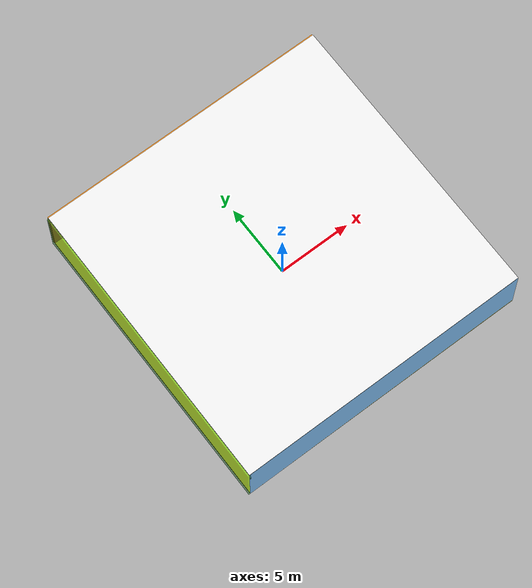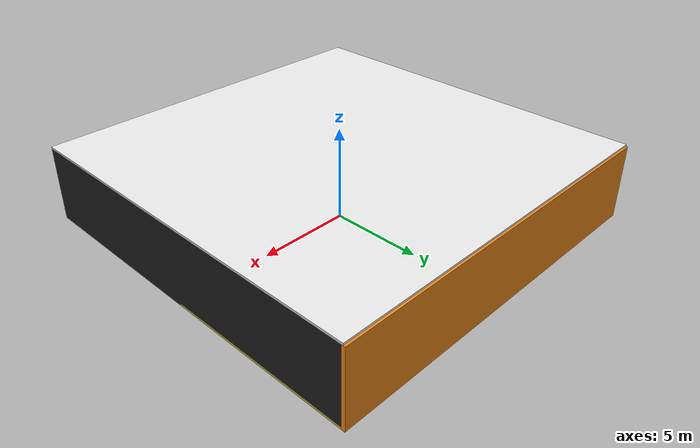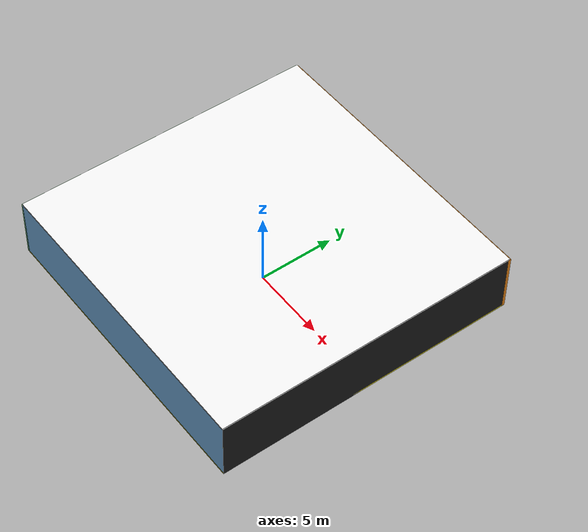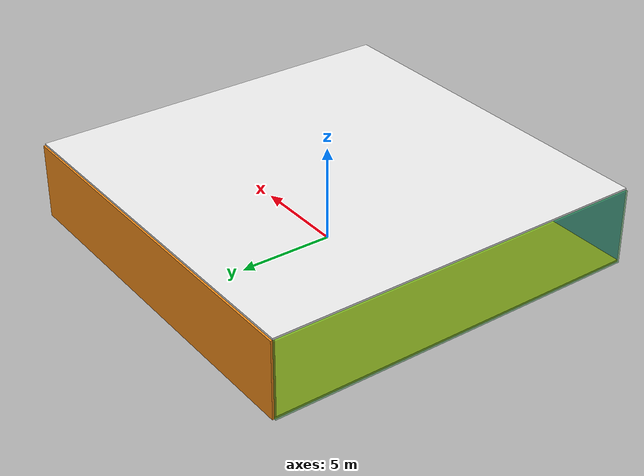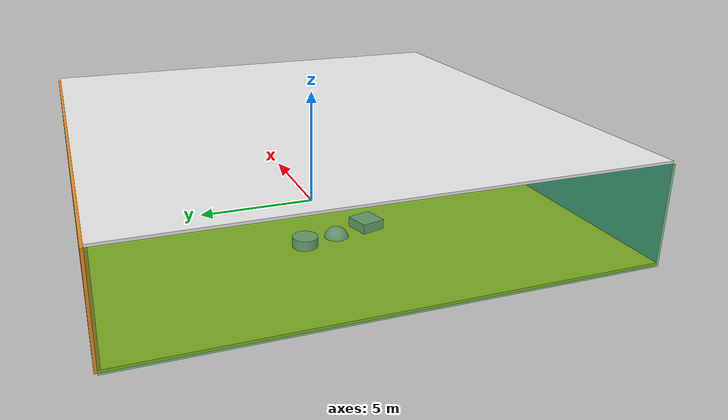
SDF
<sdf version="1.4">
 <world name="default">
  <physics type="ode">
   <max_step_size>0.001</max_step_size>
   <real_time_factor>1</real_time_factor>
   <real_time_update_rate>1000</real_time_update_rate>
   <gravity>0 0 -9.8</gravity>
  </physics>
  <scene><ambient>0.4 0.4 0.4 1</ambient><background>0.7 0.7 0.7 1</background><shadows>1</shadows></scene>
  <model name="Surrounding">
   <static>1</static>
   <link name="Ceiling">
    <collision name="Ceiling_Collision"><geometry><box><size>20 20 0.1</size></box></geometry></collision>
    <visual name="Ceiling_Visual">
     <geometry><box><size>20 20 0.1</size></box></geometry>
     <material>
      <script><uri>file://media/materials/scripts/gazebo.material</uri><name>Gazebo/White</name></script>
     </material>
    </visual>
    <pose>0 0 4.05 0 0 0</pose>
   </link>
   <link name="Wall_South">
    <collision name="Wall_South_Collision">
     <geometry><box><size>20 0 4</size></box></geometry>
     <pose>0 0 2 0 -0 0</pose>
    </collision>
    <visual name="Wall_South_Visual">
     <pose>0 0 2 0 -0 0</pose>
     <geometry><box><size>20 0 4</size></box></geometry>
     <material>
      <script><uri>file://media/materials/scripts/gazebo.material</uri><name>Gazebo/SkyBlue</name></script>
     </material>
    </visual>
    <velocity_decay><linear>0</linear><angular>0</angular></velocity_decay>
    <pose>0 -10 0 0 -0 0</pose>
   </link>
   <link name="Wall_East">
    <collision name="Wall_21_Collision">
     <geometry><box><size>20 0 4</size></box></geometry>
     <pose>0 0 2 0 -0 0</pose>
    </collision>
    <visual name="Wall_21_Visual">
     <pose>0 0 2 0 -0 0</pose>
     <geometry><box><size>20 0 4</size></box></geometry>
     <material>
      <script><uri>file://media/materials/scripts/gazebo.material</uri><name>Gazebo/Black</name></script>
     </material>
    </visual>
    <velocity_decay><linear>0</linear><angular>0</angular></velocity_decay>
    <pose>10 0 0 0 -0 1.5708</pose>
   </link>
   <link name="Wall_North">
    <collision name="Wall_22_Collision">
     <geometry><box><size>20 0.2 4</size></box></geometry>
     <pose>0 0 2 0 -0 0</pose>
    </collision>
    <visual name="Wall_22_Visual">
     <pose>0 0 2 0 -0 0</pose>
     <geometry><box><size>20 0.2 4</size></box></geometry>
     <material>
      <script><uri>file://media/materials/scripts/gazebo.material</uri><name>Gazebo/Orange</name></script>
     </material>
    </visual>
    <velocity_decay><linear>0</linear><angular>0</angular></velocity_decay>
    <pose>0 10 0 0 -0 0</pose>
   </link>
   <link name="Wall_West">
    <collision name="Wall_23_Collision">
     <geometry><box><size>20 0.2 4</size></box></geometry>
     <pose>0 0 2 0 -0 0</pose>
    </collision>
    <visual name="Wall_23_Visual">
     <pose>0 0 2 0 -0 0</pose>
     <geometry><box><size>20 0.2 4</size></box></geometry>
     <material>
      <script><uri>file://media/materials/scripts/gazebo.material</uri><name>Gazebo/GreenTransparent</name></script>
     </material>
    </visual>
    <velocity_decay><linear>0</linear><angular>0</angular></velocity_decay>
    <pose>-10 0 0 0 0 -1.5708</pose>
   </link>
   <link name="Ground_link">
    <collision name="collision">
     <pose>0 0 .05 0 -0 0</pose>
     <geometry><box><size>20 20 0.1</size></box></geometry>
    </collision>
    <visual name="visual">
     <pose>0 0 .05 0 -0 0</pose>
     <geometry><box><size>20 20 0.1</size></box></geometry>
     <material>
      <script><uri>file://media/materials/scripts/gazebo.material</uri><name>Gazebo/YellowGlow</name></script>
     </material>
    </visual>
   </link>
   <static>1</static>
  </model>
  <spherical_coordinates>
   <surface_model>EARTH_WGS84</surface_model>
   <latitude_deg>0</latitude_deg>
   <longitude_deg>0</longitude_deg>
   <elevation>0</elevation>
   <heading_deg>0</heading_deg>
  </spherical_coordinates>
  <light name="lightball_0" type="diffuse">
   <diffuse>0.8 0.8 0.8 1</diffuse>
   <specular>0.2 0.2 0.2 1</specular>
   <attenuation>
    <range>100</range>
    <constant>0.7</constant>
    <linear>0.01</linear>
    <quadratic>0.001</quadratic>
   </attenuation>
   <direction>-0.5 0.1 -0.9</direction>
   <pose>-4.42762469543 -2.46597302928 3.66879624601 0 0 0</pose>
  </light>
  <light name="lightball_1" type="diffuse">
   <diffuse>0.8 0.8 0.8 1</diffuse>
   <specular>0.2 0.2 0.2 1</specular>
   <attenuation>
    <range>100</range>
    <constant>0.7</constant>
    <linear>0.01</linear>
    <quadratic>0.001</quadratic>
   </attenuation>
   <direction>-0.5 0.1 -0.9</direction>
   <pose>6.66183131932 4.92247475943 0.808810083062 0 0 0</pose>
  </light>
  <light name="lightball_2" type="diffuse">
   <diffuse>0.8 0.8 0.8 1</diffuse>
   <specular>0.2 0.2 0.2 1</specular>
   <attenuation>
    <range>100</range>
    <constant>0.7</constant>
    <linear>0.01</linear>
    <quadratic>0.001</quadratic>
   </attenuation>
   <direction>-0.5 0.1 -0.9</direction>
   <pose>-9.61957334119 -9.98981068522 3.08828189352 0 0 0</pose>
  </light>
  <light name="lightball_3" type="diffuse">
   <diffuse>0.8 0.8 0.8 1</diffuse>
   <specular>0.2 0.2 0.2 1</specular>
   <attenuation>
    <range>100</range>
    <constant>0.7</constant>
    <linear>0.01</linear>
    <quadratic>0.001</quadratic>
   </attenuation>
   <direction>-0.5 0.1 -0.9</direction>
   <pose>2.61814474663 9.77709613232 0.701260375385 0 0 0</pose>
  </light>
  <light name="lightball_4" type="diffuse">
   <diffuse>0.8 0.8 0.8 1</diffuse>
   <specular>0.2 0.2 0.2 1</specular>
   <attenuation>
    <range>100</range>
    <constant>0.7</constant>
    <linear>0.01</linear>
    <quadratic>0.001</quadratic>
   </attenuation>
   <direction>-0.5 0.1 -0.9</direction>
   <pose>-9.85277222797 0.624574339821 3.84353110845 0 0 0</pose>
  </light>
  <light name="lightball_5" type="diffuse">
   <diffuse>0.8 0.8 0.8 1</diffuse>
   <specular>0.2 0.2 0.2 1</specular>
   <attenuation>
    <range>100</range>
    <constant>0.7</constant>
    <linear>0.01</linear>
    <quadratic>0.001</quadratic>
   </attenuation>
   <direction>-0.5 0.1 -0.9</direction>
   <pose>1.66491575068 4.22331236501 2.03286043656 0 0 0</pose>
  </light>
  <light name="lightball_6" type="diffuse">
   <diffuse>0.8 0.8 0.8 1</diffuse>
   <specular>0.2 0.2 0.2 1</specular>
   <attenuation>
    <range>100</range>
    <constant>0.7</constant>
    <linear>0.01</linear>
    <quadratic>0.001</quadratic>
   </attenuation>
   <direction>-0.5 0.1 -0.9</direction>
   <pose>-4.41388397394 7.48599324237 1.19035183806 0 0 0</pose>
  </light>
  <light name="lightball_7" type="diffuse">
   <diffuse>0.8 0.8 0.8 1</diffuse>
   <specular>0.2 0.2 0.2 1</specular>
   <attenuation>
    <range>100</range>
    <constant>0.7</constant>
    <linear>0.01</linear>
    <quadratic>0.001</quadratic>
   </attenuation>
   <direction>-0.5 0.1 -0.9</direction>
   <pose>7.08943562856 2.27172272677 3.84497131052 0 0 0</pose>
  </light>
  <include>
   <uri>model://textured_shapes</uri>
   <pose>-4.00729835691 0.354415251868 0 0 0 0.266067298371</pose>
  </include>
  <include><uri>model://cabinet</uri><pose>-0.315200983611 -8.10323199929 0 0 0 2.02299311043</pose></include>
  <include>
   <uri>model://textured_shapes</uri>
   <pose>2.26419592321 2.03337494282 0 0 0 0.298468876488</pose>
  </include>
  <include>
   <uri>model://robocup_3Dsim_goal</uri>
   <pose>6.70182248723 -8.07185103916 0 0 0 2.59111090622</pose>
  </include>
 </world>
</sdf>

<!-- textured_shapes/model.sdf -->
<sdf version="1.6">
  <model name="textured_shapes">
    <pose>0 0 0.5 0 0 0</pose>
    <link name="box">
      <pose>0 -1.5 0 0 0 0</pose>
      <collision name="collision">
        <geometry>
          <box>
            <size>1 1 1</size>
          </box>
        </geometry>
      </collision>
      <visual name="visual">
        <geometry>
          <box>
            <size>1 1 1</size>
          </box>
        </geometry>
        <material>
          <script>
            <uri>model://../model_source/models/textured_shapes/materials/scripts</uri>
            <uri>model://../model_source/models/textured_shapes/materials/textures</uri>
            <name>TexturedShape/Squares</name>
          </script>
        </material>
      </visual>
    </link>
    <link name="sphere">
      <collision name="collision">
        <geometry>
          <sphere>
            <radius>0.5</radius>
          </sphere>
        </geometry>
      </collision>
      <visual name="visual">
        <geometry>
          <sphere>
            <radius>0.5</radius>
          </sphere>
        </geometry>
        <material>
          <script>
            <uri>model://../model_source/models/textured_shapes/materials/scripts</uri>
            <uri>model://../model_source/models/textured_shapes/materials/textures</uri>
            <name>TexturedShape/Squares</name>
          </script>
        </material>
      </visual>
    </link>
    <link name="cylinder">
      <pose>0 1.5 0 0 0 0</pose>
      <collision name="collision">
        <geometry>
          <cylinder>
            <radius>0.5</radius>
            <length>1</length>
          </cylinder>
        </geometry>
      </collision>
      <visual name="visual">
        <geometry>
          <cylinder>
            <radius>0.5</radius>
            <length>1</length>
          </cylinder>
        </geometry>
        <material>
          <script>
            <uri>model://../model_source/models/textured_shapes/materials/scripts</uri>
            <uri>model://../model_source/models/textured_shapes/materials/textures</uri>
            <name>TexturedShape/Squares</name>
          </script>
        </material>
      </visual>
    </link>
  </model>
</sdf>

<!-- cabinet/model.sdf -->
<sdf version="1.5">
  <model name="cabinet">
    <static>true</static>
    <link name="cabinet_bottom_plate">
      <inertial>
        <pose>0 0 -1 0 0 0</pose>
        <inertia>
          <ixx>2.050000</ixx>
          <ixy>0</ixy>
          <ixz>0</ixz>
          <iyy>2.050000</iyy>
          <iyz>0</iyz>
          <izz>2.050000</izz>
        </inertia>
        <mass>25.000000</mass>
      </inertial>
      <collision name="cabinet_bottom_plate_geom">
        <pose>0 0 0.010000 0 0 0</pose>
        <geometry>
          <box>
            <size>0.450000 0.450000 0.020000</size>
          </box>
        </geometry>
      </collision>
      <visual name="cabinet_bottom_plate_geom_visual">
        <pose>0 0 0.010000 0 0 0</pose>
        <geometry>
          <box>
            <size>0.450000 0.450000 0.020000</size>
          </box>
        </geometry>
        <material>
          <script>
            <uri>model://media/materials/scripts/gazebo.material</uri>
            <name>Gazebo/Wood</name>
          </script>
        </material>
      </visual>
      <collision name="cabinet_bottom_plate_geom_cabinet_back_plate">
        <pose>0.235000 0 0.510000 0 0 0</pose>
        <geometry>
          <box>
            <size>0.020000 0.450000 1.020000</size>
          </box>
        </geometry>
      </collision>
      <visual name="cabinet_bottom_plate_geom_cabinet_back_plate_visual">
        <pose>0.235000 0 0.510000 0 0 0</pose>
        <geometry>
          <box>
            <size>0.020000 0.450000 1.020000</size>
          </box>
        </geometry>
        <material>
          <script>
            <uri>model://media/materials/scripts/gazebo.material</uri>
            <name>Gazebo/Wood</name>
          </script>
        </material>
      </visual>
      <collision name="cabinet_bottom_plate_geom_cabinet_left_plate">
        <pose>0 0.235000 0.510000 0 0 0</pose>
        <geometry>
          <box>
            <size>0.450000 0.020000 1.020000</size>
          </box>
        </geometry>
      </collision>
      <visual name="cabinet_bottom_plate_geom_cabinet_left_plate_visual">
        <pose>0 0.235000 0.510000 0 0 0</pose>
        <geometry>
          <box>
            <size>0.450000 0.020000 1.020000</size>
          </box>
        </geometry>
        <material>
          <script>
            <uri>model://media/materials/scripts/gazebo.material</uri>
            <name>Gazebo/Wood</name>
          </script>
        </material>
      </visual>
      <collision name="cabinet_bottom_plate_geom_cabinet_middle_plate">
        <pose>0 0 0.510000 0 0 0</pose>
        <geometry>
          <box>
            <size>0.450000 0.450000 0.020000</size>
          </box>
        </geometry>
      </collision>
      <visual name="cabinet_bottom_plate_geom_cabinet_middle_plate_visual">
        <pose>0 0 0.510000 0 0 0</pose>
        <geometry>
          <box>
            <size>0.450000 0.450000 0.020000</size>
          </box>
        </geometry>
        <material>
          <script>
            <uri>model://media/materials/scripts/gazebo.material</uri>
            <name>Gazebo/Wood</name>
          </script>
        </material>
      </visual>
      <collision name="cabinet_bottom_plate_geom_cabinet_right_plate">
        <pose>0 -0.235000 0.510000 0 0 0</pose>
        <geometry>
          <box>
            <size>0.450000 0.020000 1.020000</size>
          </box>
        </geometry>
      </collision>
      <visual name="cabinet_bottom_plate_geom_cabinet_right_plate_visual">
        <pose>0 -0.235000 0.510000 0 0 0</pose>
        <geometry>
          <box>
            <size>0.450000 0.020000 1.020000</size>
          </box>
        </geometry>
        <material>
          <script>
            <uri>model://media/materials/scripts/gazebo.material</uri>
            <name>Gazebo/Wood</name>
          </script>
        </material>
      </visual>
      <collision name="cabinet_bottom_plate_geom_cabinet_top_plate">
        <pose>0 0 1.010000 0 0 0</pose>
        <geometry>
          <box>
            <size>0.450000 0.450000 0.020000</size>
          </box>
        </geometry>
      </collision>
      <visual name="cabinet_bottom_plate_geom_cabinet_top_plate_visual">
        <pose>0 0 1.010000 0 0 0</pose>
        <geometry>
          <box>
            <size>0.450000 0.450000 0.020000</size>
          </box>
        </geometry>
        <material>
          <script>
            <uri>model://media/materials/scripts/gazebo.material</uri>
            <name>Gazebo/Wood</name>
          </script>
        </material>
      </visual>
    </link>
  </model>
</sdf>

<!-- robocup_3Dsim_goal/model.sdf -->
<sdf version="1.5">
  <model name="robocup_3d_goal">
    <static>true</static>
    <link name="left_post">
      <pose>0 1.05 0.45 0 0 0</pose>
      <collision name="collision">
        <geometry>
          <cylinder>
            <radius>0.05</radius>
            <length>0.9</length>
          </cylinder>
        </geometry>
      </collision>
      <visual name="visual">
        <geometry>
          <cylinder>
            <radius>0.05</radius>
            <length>0.9</length>
          </cylinder>
        </geometry>
        <material>
          <script>
            <uri>file://media/materials/scripts/gazebo.material</uri>
            <name>Gazebo/ZincYellow</name>
          </script>
        </material>
      </visual>
    </link>
    <link name="left_support_horiz_lower">
      <pose>0.30 1.05 0.01 0 0 0</pose>
      <collision name="collision">
        <geometry>
          <box>
            <size>0.50 0.02 0.02</size>
          </box>
        </geometry>
      </collision>
      <visual name="visual">
        <geometry>
          <box>
            <size>0.50 0.02 0.02</size>
          </box>
        </geometry>
        <material>
          <script>
            <uri>file://media/materials/scripts/gazebo.material</uri>
            <name>Gazebo/White</name>
          </script>
        </material>
      </visual>
    </link>
    <link name="left_support_horiz_upper">
      <pose>0.30 1.05 0.79 0 0 0</pose>
      <collision name="collision">
        <geometry>
          <box>
            <size>0.50 0.02 0.02</size>
          </box>
        </geometry>
      </collision>
      <visual name="visual">
        <geometry>
          <box>
            <size>0.50 0.02 0.02</size>
          </box>
        </geometry>
        <material>
          <script>
            <uri>file://media/materials/scripts/gazebo.material</uri>
            <name>Gazebo/White</name>
          </script>
        </material>
      </visual>
    </link>
    <link name="left_support_vertical">
      <pose>0.56 1.05 0.4 0 1.5708 0</pose>
      <collision name="collision">
        <geometry>
          <box>
            <size>0.80 0.02 0.02</size>
          </box>
        </geometry>
      </collision>
      <visual name="visual">
        <geometry>
          <box>
            <size>0.80 0.02 0.02</size>
          </box>
        </geometry>
        <material>
          <script>
            <uri>file://media/materials/scripts/gazebo.material</uri>
            <name>Gazebo/White</name>
          </script>
        </material>
      </visual>
    </link>
    <link name="right_support_horiz_lower">
      <pose>0.30 -1.05 0.01 0 0 0</pose>
      <collision name="collision">
        <geometry>
          <box>
            <size>0.50 0.02 0.02</size>
          </box>
        </geometry>
      </collision>
      <visual name="visual">
        <geometry>
          <box>
            <size>0.50 0.02 0.02</size>
          </box>
        </geometry>
        <material>
          <script>
            <uri>file://media/materials/scripts/gazebo.material</uri>
            <name>Gazebo/White</name>
          </script>
        </material>
      </visual>
    </link>
    <link name="right_support_horiz_upper">
      <pose>0.30 -1.05 0.79 0 0 0</pose>
      <collision name="collision">
        <geometry>
          <box>
            <size>0.50 0.02 0.02</size>
          </box>
        </geometry>
      </collision>
      <visual name="visual">
        <geometry>
          <box>
            <size>0.50 0.02 0.02</size>
          </box>
        </geometry>
        <material>
          <script>
            <uri>file://media/materials/scripts/gazebo.material</uri>
            <name>Gazebo/White</name>
          </script>
        </material>
      </visual>
    </link>
    <link name="right_support_vertical">
      <pose>0.56 -1.05 0.4 0 1.5708 0</pose>
      <collision name="collision">
        <geometry>
          <box>
            <size>0.80 0.02 0.02</size>
          </box>
        </geometry>
      </collision>
      <visual name="visual">
        <geometry>
          <box>
            <size>0.80 0.02 0.02</size>
          </box>
        </geometry>
        <material>
          <script>
            <uri>file://media/materials/scripts/gazebo.material</uri>
            <name>Gazebo/White</name>
          </script>
        </material>
      </visual>
    </link>
    <link name="center_support_horiz_lower">
      <pose>0.56 0 0.01 0 1.5708 0</pose>
      <collision name="collision">
        <geometry>
          <box>
            <size>0.02 2.08 0.02</size>
          </box>
        </geometry>
      </collision>
      <visual name="visual">
        <geometry>
          <box>
            <size>0.02 2.08 0.02</size>
          </box>
        </geometry>
        <material>
          <script>
            <uri>file://media/materials/scripts/gazebo.material</uri>
            <name>Gazebo/White</name>
          </script>
        </material>
      </visual>
    </link>
    <link name="center_support_horiz_upper">
      <pose>0.56 0 0.79 0 1.5708 0</pose>
      <collision name="collision">
        <geometry>
          <box>
            <size>0.02 2.08 0.02</size>
          </box>
        </geometry>
      </collision>
      <visual name="visual">
        <geometry>
          <box>
            <size>0.02 2.08 0.02</size>
          </box>
        </geometry>
        <material>
          <script>
            <uri>file://media/materials/scripts/gazebo.material</uri>
            <name>Gazebo/White</name>
          </script>
        </material>
      </visual>
    </link>
    <link name="right_post">
      <pose>0 -1.05 0.45 0 0 0</pose>
      <collision name="collision">
        <geometry>
          <cylinder>
            <radius>0.05</radius>
            <length>0.9</length>
          </cylinder>
        </geometry>
      </collision>
      <visual name="visual">
        <geometry>
          <cylinder>
            <radius>0.05</radius>
            <length>0.9</length>
          </cylinder>
        </geometry>
        <material>
          <script>
            <uri>file://media/materials/scripts/gazebo.material</uri>
            <name>Gazebo/ZincYellow</name>
          </script>
        </material>
      </visual>
    </link>
    <link name="crossbar">
      <pose>0 0 0.85 1.57 1.57 0</pose>
      <collision name="collision">
        <geometry>
          <cylinder>
            <radius>0.05</radius>
            <length>2.0</length>
          </cylinder>
        </geometry>
      </collision>
      <visual name="visual">
        <geometry>
          <cylinder>
            <radius>0.05</radius>
            <length>2.0</length>
          </cylinder>
        </geometry>
        <material>
          <script>
            <uri>file://media/materials/scripts/gazebo.material</uri>
            <name>Gazebo/ZincYellow</name>
          </script>
        </material>
      </visual>
    </link>
    <link name="center_net">
      <pose>0.56 0 0.40 0 0 0</pose>
      <collision name="collision">
        <geometry>
          <box>
            <size>0.01 2.1 0.80</size>
          </box>
        </geometry>
      </collision>
      <visual name="visual">
        <geometry>
          <box>
            <size>0.01 2.1 0.80</size>
          </box>
        </geometry>
        <material>
          <script>
            <uri>model://../model_source/models/robocup09_spl_field/materials/scripts/</uri>
            <uri>model://../model_source/models/robocup09_spl_field/materials/textures/</uri>
            <name>RoboCup/Net</name>
          </script>
        </material>
      </visual>
    </link>
    <link name="left_net">
      <pose>0.30 1.05 0.40 0 0 0</pose>
      <collision name="collision">
        <geometry>
          <box>
            <size>0.50 0.01 0.76</size>
          </box>
        </geometry>
      </collision>
      <visual name="visual">
        <geometry>
          <box>
            <size>0.50 0.01 0.76</size>
          </box>
        </geometry>
        <material>
          <script>
            <uri>model://../model_source/models/robocup09_spl_field/materials/scripts/</uri>
            <uri>model://../model_source/models/robocup09_spl_field/materials/textures/</uri>
            <name>RoboCup/Net</name>
          </script>
        </material>
      </visual>
    </link>
    <link name="right_net">
      <pose>0.30 -1.05 0.40 0 0 0</pose>
      <collision name="collision">
        <geometry>
          <box>
            <size>0.50 0.01 0.76</size>
          </box>
        </geometry>
      </collision>
      <visual name="visual">
        <geometry>
          <box>
            <size>0.50 0.01 0.76</size>
          </box>
        </geometry>
        <material>
          <script>
            <uri>model://../model_source/models/robocup09_spl_field/materials/scripts/</uri>
            <uri>model://../model_source/models/robocup09_spl_field/materials/textures/</uri>
            <name>RoboCup/Net</name>
          </script>
        </material>
      </visual>
    </link>
  </model>
</sdf>
